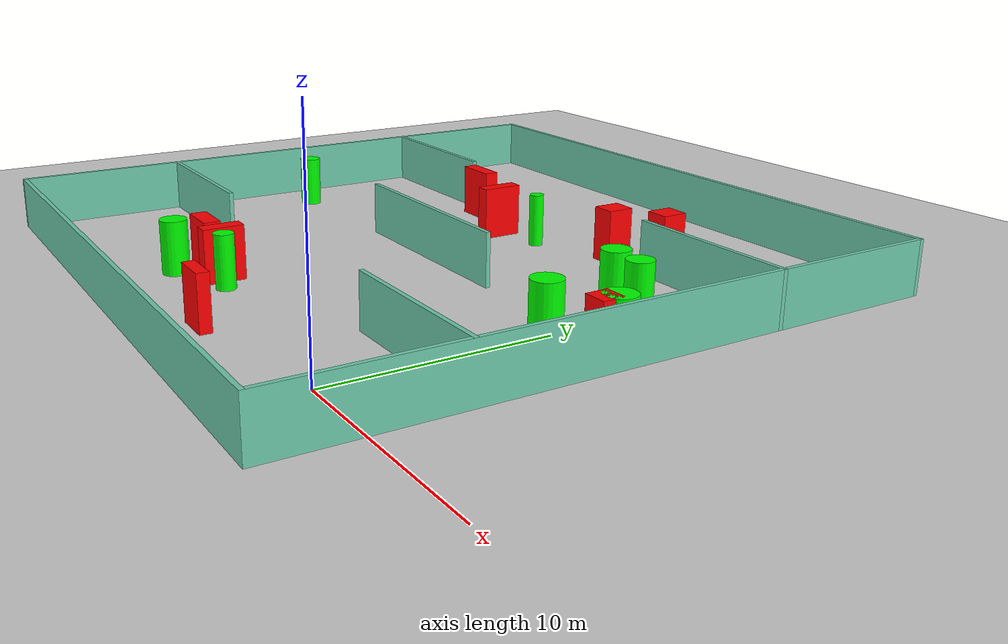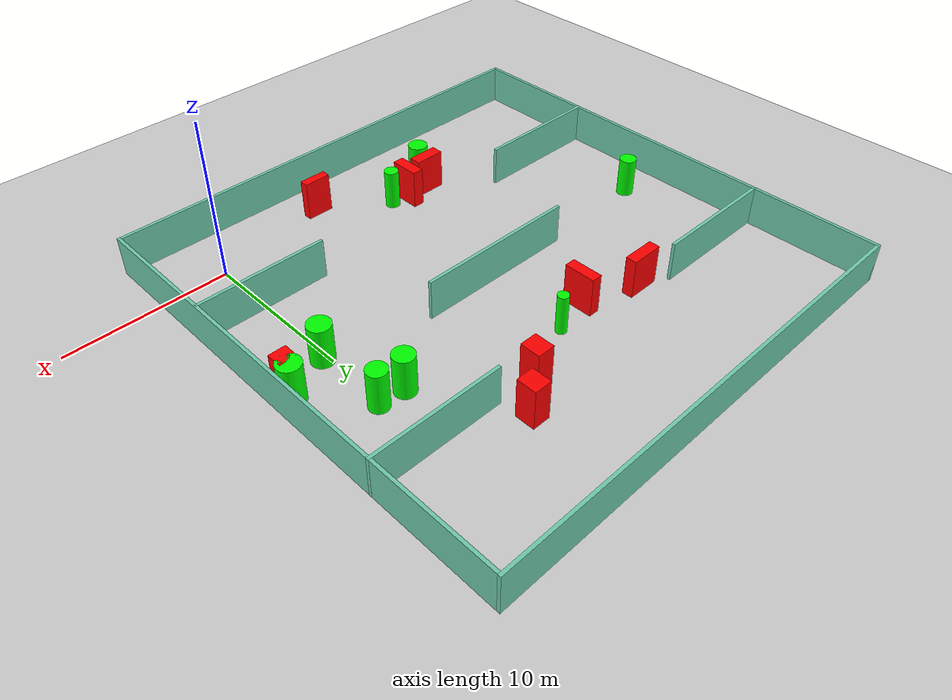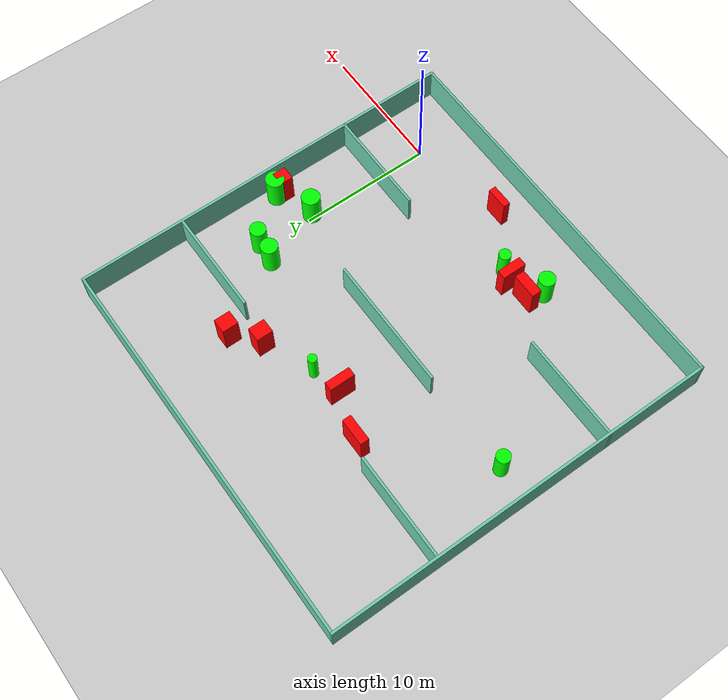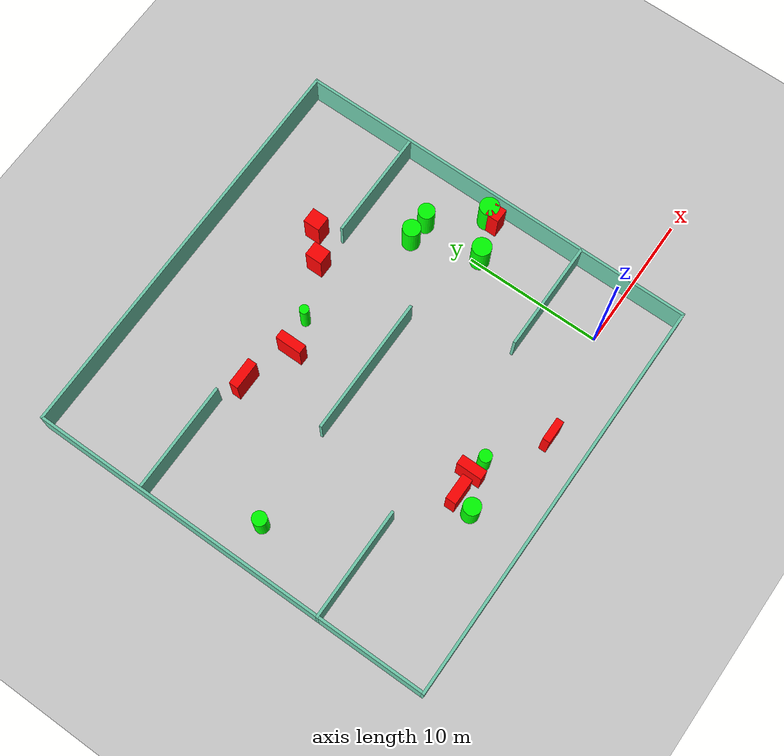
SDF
<sdf version="1.7">
 <world name="default">
  <light name="sun" type="directional">
   <pose>0 0 10 0 -0 0</pose>
   <diffuse>0.8 0.8 0.8 1</diffuse>
   <specular>0.2 0.2 0.2 1</specular>
   <attenuation>
    <range>1000</range>
    <constant>0.9</constant>
    <linear>0.01</linear>
    <quadratic>0.001</quadratic>
   </attenuation>
   <direction>-0.5 0.1 -0.9</direction>
   <spot><inner_angle>0</inner_angle><outer_angle>0</outer_angle><falloff>0</falloff></spot>
  </light>
  <model name="ground_plane">
   <static>1</static>
   <link name="link">
    <collision name="collision">
     <geometry><plane><normal>0 0 1</normal><size>100 100</size></plane></geometry>
     <surface>
      <contact><collide_bitmask>65535</collide_bitmask></contact>
      <friction><ode><mu>100</mu><mu2>50</mu2></ode></friction>
     </surface>
    </collision>
    <visual name="visual">
     <cast_shadows>0</cast_shadows>
     <geometry><plane><normal>0 0 1</normal><size>100 100</size></plane></geometry>
     <material>
      <script><uri>file://media/materials/scripts/gazebo.material</uri><name>Gazebo/Grey</name></script>
     </material>
    </visual>
   </link>
  </model>
  <gravity>0 0 -9.8</gravity>
  <magnetic_field>6e-06 2.3e-05 -4.2e-05</magnetic_field>
  <atmosphere type="adiabatic"/>
  <physics type="ode">
   <max_step_size>0.001</max_step_size>
   <real_time_factor>1</real_time_factor>
   <real_time_update_rate>1000</real_time_update_rate>
  </physics>
  <scene><ambient>0.4 0.4 0.4 1</ambient><background>0.7 0.7 0.7 1</background><shadows>1</shadows></scene>
  <spherical_coordinates>
   <surface_model>EARTH_WGS84</surface_model>
   <latitude_deg>0</latitude_deg>
   <longitude_deg>0</longitude_deg>
   <elevation>0</elevation>
   <heading_deg>0</heading_deg>
  </spherical_coordinates>
  <model name="my_base_walls">
   <link name="Wall_10">
    <collision name="Wall_10_Collision">
     <geometry><box><size>8.2 0.2 2.5</size></box></geometry>
     <pose>0 0 1.25 0 -0 0</pose>
    </collision>
    <visual name="Wall_10_Visual">
     <pose>0 0 1.25 0 -0 0</pose>
     <geometry><box><size>8.2 0.2 2.5</size></box></geometry>
     <material>
      <script><uri>file://media/materials/scripts/gazebo.material</uri><name>Gazebo/Grey</name></script>
      <ambient>0.435294 0.796078 0.67451 1</ambient>
     </material>
     <meta><layer>0</layer></meta>
    </visual>
    <pose>-11 -7 0 0 -0 0</pose>
   </link>
   <link name="Wall_12">
    <collision name="Wall_12_Collision">
     <geometry><box><size>8.2 0.2 2.5</size></box></geometry>
     <pose>0 0 1.25 0 -0 0</pose>
    </collision>
    <visual name="Wall_12_Visual">
     <pose>0 0 1.25 0 -0 0</pose>
     <geometry><box><size>8.2 0.2 2.5</size></box></geometry>
     <material>
      <script><uri>file://media/materials/scripts/gazebo.material</uri><name>Gazebo/Grey</name></script>
      <ambient>0.435294 0.796078 0.67451 1</ambient>
     </material>
     <meta><layer>0</layer></meta>
    </visual>
    <pose>-11 7 0 0 -0 0</pose>
   </link>
   <link name="Wall_14">
    <collision name="Wall_14_Collision">
     <geometry><box><size>8.2 0.2 2.5</size></box></geometry>
     <pose>0 0 1.25 0 -0 0</pose>
    </collision>
    <visual name="Wall_14_Visual">
     <pose>0 0 1.25 0 -0 0</pose>
     <geometry><box><size>8.2 0.2 2.5</size></box></geometry>
     <material>
      <script><uri>file://media/materials/scripts/gazebo.material</uri><name>Gazebo/Grey</name></script>
      <ambient>0.435294 0.796078 0.67451 1</ambient>
     </material>
     <meta><layer>0</layer></meta>
    </visual>
    <pose>11 7 0 0 -0 3.14159</pose>
   </link>
   <link name="Wall_16">
    <collision name="Wall_16_Collision">
     <geometry><box><size>10.2 0.2 2.5</size></box></geometry>
     <pose>0 0 1.25 0 -0 0</pose>
    </collision>
    <visual name="Wall_16_Visual">
     <pose>0 0 1.25 0 -0 0</pose>
     <geometry><box><size>10.2 0.2 2.5</size></box></geometry>
     <material>
      <script><uri>file://media/materials/scripts/gazebo.material</uri><name>Gazebo/Grey</name></script>
      <ambient>0.435294 0.796078 0.67451 1</ambient>
     </material>
     <meta><layer>0</layer></meta>
    </visual>
    <pose>0 0 0 0 -0 3.14159</pose>
   </link>
   <link name="Wall_2">
    <collision name="Wall_2_Collision">
     <geometry><box><size>30.2 0.2 2.5</size></box></geometry>
     <pose>0 0 1.25 0 -0 0</pose>
    </collision>
    <visual name="Wall_2_Visual">
     <pose>0 0 1.25 0 -0 0</pose>
     <geometry><box><size>30.2 0.2 2.5</size></box></geometry>
     <material>
      <script><uri>file://media/materials/scripts/gazebo.material</uri><name>Gazebo/Grey</name></script>
      <ambient>0.435294 0.796078 0.67451 1</ambient>
     </material>
     <meta><layer>0</layer></meta>
    </visual>
    <pose>0 -15 0 0 -0 3.14159</pose>
   </link>
   <link name="Wall_3">
    <collision name="Wall_3_Collision">
     <geometry><box><size>30.2 0.2 2.5</size></box></geometry>
     <pose>0 0 1.25 0 -0 0</pose>
    </collision>
    <visual name="Wall_3_Visual">
     <pose>0 0 1.25 0 -0 0</pose>
     <geometry><box><size>30.2 0.2 2.5</size></box></geometry>
     <material>
      <script><uri>file://media/materials/scripts/gazebo.material</uri><name>Gazebo/Grey</name></script>
      <ambient>0.435294 0.796078 0.67451 1</ambient>
     </material>
     <meta><layer>0</layer></meta>
    </visual>
    <pose>-15 0 0 0 -0 1.5708</pose>
   </link>
   <link name="Wall_4">
    <collision name="Wall_4_Collision">
     <geometry><box><size>30.2 0.2 2.5</size></box></geometry>
     <pose>0 0 1.25 0 -0 0</pose>
    </collision>
    <visual name="Wall_4_Visual">
     <pose>0 0 1.25 0 -0 0</pose>
     <geometry><box><size>30.2 0.2 2.5</size></box></geometry>
     <material>
      <script><uri>file://media/materials/scripts/gazebo.material</uri><name>Gazebo/Grey</name></script>
      <ambient>0.435294 0.796078 0.67451 1</ambient>
     </material>
     <meta><layer>0</layer></meta>
    </visual>
    <pose>0 15 0 0 -0 0</pose>
   </link>
   <link name="Wall_6">
    <collision name="Wall_6_Collision">
     <geometry><box><size>30.2 0.2 2.5</size></box></geometry>
     <pose>0 0 1.25 0 -0 0</pose>
    </collision>
    <visual name="Wall_6_Visual">
     <pose>0 0 1.25 0 -0 0</pose>
     <geometry><box><size>30.2 0.2 2.5</size></box></geometry>
     <material>
      <script><uri>file://media/materials/scripts/gazebo.material</uri><name>Gazebo/Grey</name></script>
      <ambient>0.435294 0.796078 0.67451 1</ambient>
     </material>
     <meta><layer>0</layer></meta>
    </visual>
    <pose>15 0 0 0 -0 1.5708</pose>
   </link>
   <link name="Wall_8">
    <collision name="Wall_8_Collision">
     <geometry><box><size>8.2 0.2 2.5</size></box></geometry>
     <pose>0 0 1.25 0 -0 0</pose>
    </collision>
    <visual name="Wall_8_Visual">
     <pose>0 0 1.25 0 -0 0</pose>
     <geometry><box><size>8.2 0.2 2.5</size></box></geometry>
     <material>
      <script><uri>file://media/materials/scripts/gazebo.material</uri><name>Gazebo/Grey</name></script>
      <ambient>0.435294 0.796078 0.67451 1</ambient>
     </material>
     <meta><layer>0</layer></meta>
    </visual>
    <pose>11 -7 0 0 -0 3.14159</pose>
   </link>
   <static>1</static>
   <pose>-11 11 0 0 -0 0</pose>
  </model>
  <model name="cylinder1">
   <static>1</static>
   <link name="link">
    <inertial>
     <mass>1</mass>
     <inertia><ixx>0.5</ixx><ixy>0</ixy><ixz>0</ixz><iyy>0.5</iyy><iyz>0</iyz><izz>1</izz></inertia>
    </inertial>
    <collision name="collision">
     <geometry><cylinder><radius>0.6925863595175858</radius><length>2.5</length></cylinder></geometry>
    </collision>
    <visual name="visual">
     <geometry><cylinder><radius>0.6925863595175858</radius><length>2.5</length></cylinder></geometry>
     <material>
      <ambient>0 1 0 1</ambient>
      <diffuse>0 1 0 1</diffuse>
      <specular>0.1 0.1 0.1 1</specular>
      <emissive>0 0 0 0</emissive>
     </material>
    </visual>
   </link>
   <pose>0.30175399349553444 9.541450600312997 1.25 0 0 0</pose>
  </model>
  <model name="cylinder2">
   <static>1</static>
   <link name="link">
    <inertial>
     <mass>1</mass>
     <inertia><ixx>0.5</ixx><ixy>0</ixy><ixz>0</ixz><iyy>0.5</iyy><iyz>0</iyz><izz>1</izz></inertia>
    </inertial>
    <collision name="collision">
     <geometry><cylinder><radius>0.45253288688198223</radius><length>2.5</length></cylinder></geometry>
    </collision>
    <visual name="visual">
     <geometry><cylinder><radius>0.45253288688198223</radius><length>2.5</length></cylinder></geometry>
     <material>
      <ambient>0 1 0 1</ambient>
      <diffuse>0 1 0 1</diffuse>
      <specular>0.1 0.1 0.1 1</specular>
      <emissive>0 0 0 0</emissive>
     </material>
    </visual>
   </link>
   <pose>-11.530411135669825 1.2476186207089004 1.25 0 0 0</pose>
  </model>
  <model name="cylinder3">
   <static>1</static>
   <link name="link">
    <inertial>
     <mass>1</mass>
     <inertia><ixx>0.5</ixx><ixy>0</ixy><ixz>0</ixz><iyy>0.5</iyy><iyz>0</iyz><izz>1</izz></inertia>
    </inertial>
    <collision name="collision">
     <geometry><cylinder><radius>0.6169095287703574</radius><length>2.5</length></cylinder></geometry>
    </collision>
    <visual name="visual">
     <geometry><cylinder><radius>0.6169095287703574</radius><length>2.5</length></cylinder></geometry>
     <material>
      <ambient>0 1 0 1</ambient>
      <diffuse>0 1 0 1</diffuse>
      <specular>0.1 0.1 0.1 1</specular>
      <emissive>0 0 0 0</emissive>
     </material>
    </visual>
   </link>
   <pose>-14.749782263538535 0.0901348092742138 1.25 0 0 0</pose>
  </model>
  <model name="cylinder4">
   <static>1</static>
   <link name="link">
    <inertial>
     <mass>1</mass>
     <inertia><ixx>0.5</ixx><ixy>0</ixy><ixz>0</ixz><iyy>0.5</iyy><iyz>0</iyz><izz>1</izz></inertia>
    </inertial>
    <collision name="collision">
     <geometry><cylinder><radius>0.5196451261162937</radius><length>2.5</length></cylinder></geometry>
    </collision>
    <visual name="visual">
     <geometry><cylinder><radius>0.5196451261162937</radius><length>2.5</length></cylinder></geometry>
     <material>
      <ambient>0 1 0 1</ambient>
      <diffuse>0 1 0 1</diffuse>
      <specular>0.1 0.1 0.1 1</specular>
      <emissive>0 0 0 0</emissive>
     </material>
    </visual>
   </link>
   <pose>-23.18208358557703 10.593863673118001 1.25 0 0 0</pose>
  </model>
  <model name="cylinder5">
   <static>1</static>
   <link name="link">
    <inertial>
     <mass>1</mass>
     <inertia><ixx>0.5</ixx><ixy>0</ixy><ixz>0</ixz><iyy>0.5</iyy><iyz>0</iyz><izz>1</izz></inertia>
    </inertial>
    <collision name="collision">
     <geometry><cylinder><radius>0.5996512347615646</radius><length>2.5</length></cylinder></geometry>
    </collision>
    <visual name="visual">
     <geometry><cylinder><radius>0.5996512347615646</radius><length>2.5</length></cylinder></geometry>
     <material>
      <ambient>0 1 0 1</ambient>
      <diffuse>0 1 0 1</diffuse>
      <specular>0.1 0.1 0.1 1</specular>
      <emissive>0 0 0 0</emissive>
     </material>
    </visual>
   </link>
   <pose>0.2890715314305723 14.059959816674812 1.25 0 0 0</pose>
  </model>
  <model name="cylinder6">
   <static>1</static>
   <link name="link">
    <inertial>
     <mass>1</mass>
     <inertia><ixx>0.5</ixx><ixy>0</ixy><ixz>0</ixz><iyy>0.5</iyy><iyz>0</iyz><izz>1</izz></inertia>
    </inertial>
    <collision name="collision">
     <geometry><cylinder><radius>0.6451512665399352</radius><length>2.5</length></cylinder></geometry>
    </collision>
    <visual name="visual">
     <geometry><cylinder><radius>0.6451512665399352</radius><length>2.5</length></cylinder></geometry>
     <material>
      <ambient>0 1 0 1</ambient>
      <diffuse>0 1 0 1</diffuse>
      <specular>0.1 0.1 0.1 1</specular>
      <emissive>0 0 0 0</emissive>
     </material>
    </visual>
   </link>
   <pose>-1.3130182958688792 14.175376598455287 1.25 0 0 0</pose>
  </model>
  <model name="cylinder7">
   <static>1</static>
   <link name="link">
    <inertial>
     <mass>1</mass>
     <inertia><ixx>0.5</ixx><ixy>0</ixy><ixz>0</ixz><iyy>0.5</iyy><iyz>0</iyz><izz>1</izz></inertia>
    </inertial>
    <collision name="collision">
     <geometry><cylinder><radius>0.33954835369598513</radius><length>2.5</length></cylinder></geometry>
    </collision>
    <visual name="visual">
     <geometry><cylinder><radius>0.33954835369598513</radius><length>2.5</length></cylinder></geometry>
     <material>
      <ambient>0 1 0 1</ambient>
      <diffuse>0 1 0 1</diffuse>
      <specular>0.1 0.1 0.1 1</specular>
      <emissive>0 0 0 0</emissive>
     </material>
    </visual>
   </link>
   <pose>-10.22081533623295 16.62326602017786 1.25 0 0 0</pose>
  </model>
  <model name="cylinder8">
   <static>1</static>
   <link name="link">
    <inertial>
     <mass>1</mass>
     <inertia><ixx>0.5</ixx><ixy>0</ixy><ixz>0</ixz><iyy>0.5</iyy><iyz>0</iyz><izz>1</izz></inertia>
    </inertial>
    <collision name="collision">
     <geometry><cylinder><radius>0.6999462667768352</radius><length>2.5</length></cylinder></geometry>
    </collision>
    <visual name="visual">
     <geometry><cylinder><radius>0.6999462667768352</radius><length>2.5</length></cylinder></geometry>
     <material>
      <ambient>0 1 0 1</ambient>
      <diffuse>0 1 0 1</diffuse>
      <specular>0.1 0.1 0.1 1</specular>
      <emissive>0 0 0 0</emissive>
     </material>
    </visual>
   </link>
   <pose>3.0433280078526153 10.777853846535951 1.25 0 0 0</pose>
  </model>
  <model name="box1">
   <static>1</static>
   <link name="link">
    <inertial>
     <mass>1</mass>
     <inertia><ixx>0.083</ixx><ixy>0</ixy><ixz>0</ixz><iyy>0.083</iyy><iyz>0</iyz><izz>0.083</izz></inertia>
    </inertial>
    <collision name="collision">
     <geometry><box><size>1.0971625284089024 1.2503812224051472 2.5</size></box></geometry>
    </collision>
    <visual name="visual">
     <geometry><box><size>1.0971625284089024 1.2503812224051472 2.5</size></box></geometry>
     <material>
      <ambient>1 0 0 1</ambient>
      <diffuse>1 0 0 1</diffuse>
      <specular>0.1 0.1 0.1 1</specular>
      <emissive>0 0 0 0</emissive>
     </material>
    </visual>
    <sensor name="my_contact" type="contact">
     <contact><collision>box_collision</collision><topic>__default_topic__</topic></contact>
    </sensor>
   </link>
   <pose>-6.44428746479336 18.261137382870903 1.25 0 0 0</pose>
  </model>
  <model name="box2">
   <static>1</static>
   <link name="link">
    <inertial>
     <mass>1</mass>
     <inertia><ixx>0.083</ixx><ixy>0</ixy><ixz>0</ixz><iyy>0.083</iyy><iyz>0</iyz><izz>0.083</izz></inertia>
    </inertial>
    <collision name="collision">
     <geometry><box><size>1.6931436810818985 0.5436315869319661 2.5</size></box></geometry>
    </collision>
    <visual name="visual">
     <geometry><box><size>1.6931436810818985 0.5436315869319661 2.5</size></box></geometry>
     <material>
      <ambient>1 0 0 1</ambient>
      <diffuse>1 0 0 1</diffuse>
      <specular>0.1 0.1 0.1 1</specular>
      <emissive>0 0 0 0</emissive>
     </material>
    </visual>
    <sensor name="my_contact" type="contact">
     <contact><collision>box_collision</collision><topic>__default_topic__</topic></contact>
    </sensor>
   </link>
   <pose>-7.603470051917785 -1.351968552456253 1.25 0 0 0</pose>
  </model>
  <model name="box3">
   <static>1</static>
   <link name="link">
    <inertial>
     <mass>1</mass>
     <inertia><ixx>0.083</ixx><ixy>0</ixy><ixz>0</ixz><iyy>0.083</iyy><iyz>0</iyz><izz>0.083</izz></inertia>
    </inertial>
    <collision name="collision">
     <geometry><box><size>1.1086603168312505 1.2321620627404708 2.5</size></box></geometry>
    </collision>
    <visual name="visual">
     <geometry><box><size>1.1086603168312505 1.2321620627404708 2.5</size></box></geometry>
     <material>
      <ambient>1 0 0 1</ambient>
      <diffuse>1 0 0 1</diffuse>
      <specular>0.1 0.1 0.1 1</specular>
      <emissive>0 0 0 0</emissive>
     </material>
    </visual>
    <sensor name="my_contact" type="contact">
     <contact><collision>box_collision</collision><topic>__default_topic__</topic></contact>
    </sensor>
   </link>
   <pose>-4.552729641707074 19.80085860312939 1.25 0 0 0</pose>
  </model>
  <model name="box4">
   <static>1</static>
   <link name="link">
    <inertial>
     <mass>1</mass>
     <inertia><ixx>0.083</ixx><ixy>0</ixy><ixz>0</ixz><iyy>0.083</iyy><iyz>0</iyz><izz>0.083</izz></inertia>
    </inertial>
    <collision name="collision">
     <geometry><box><size>0.704355274399578 1.8754052392122538 2.5</size></box></geometry>
    </collision>
    <visual name="visual">
     <geometry><box><size>0.704355274399578 1.8754052392122538 2.5</size></box></geometry>
     <material>
      <ambient>1 0 0 1</ambient>
      <diffuse>1 0 0 1</diffuse>
      <specular>0.1 0.1 0.1 1</specular>
      <emissive>0 0 0 0</emissive>
     </material>
    </visual>
    <sensor name="my_contact" type="contact">
     <contact><collision>box_collision</collision><topic>__default_topic__</topic></contact>
    </sensor>
   </link>
   <pose>-12.647473465965144 1.5405652510834704 1.25 0 0 0</pose>
  </model>
  <model name="box5">
   <static>1</static>
   <link name="link">
    <inertial>
     <mass>1</mass>
     <inertia><ixx>0.083</ixx><ixy>0</ixy><ixz>0</ixz><iyy>0.083</iyy><iyz>0</iyz><izz>0.083</izz></inertia>
    </inertial>
    <collision name="collision">
     <geometry><box><size>1.9128544572687427 0.7608806868515493 2.5</size></box></geometry>
    </collision>
    <visual name="visual">
     <geometry><box><size>1.9128544572687427 0.7608806868515493 2.5</size></box></geometry>
     <material>
      <ambient>1 0 0 1</ambient>
      <diffuse>1 0 0 1</diffuse>
      <specular>0.1 0.1 0.1 1</specular>
      <emissive>0 0 0 0</emissive>
     </material>
    </visual>
    <sensor name="my_contact" type="contact">
     <contact><collision>box_collision</collision><topic>__default_topic__</topic></contact>
    </sensor>
   </link>
   <pose>-14.294749197542004 1.4023459763311967 1.25 0 0 0</pose>
  </model>
  <model name="box6">
   <static>1</static>
   <link name="link">
    <inertial>
     <mass>1</mass>
     <inertia><ixx>0.083</ixx><ixy>0</ixy><ixz>0</ixz><iyy>0.083</iyy><iyz>0</iyz><izz>0.083</izz></inertia>
    </inertial>
    <collision name="collision">
     <geometry><box><size>1.0494606080751945 1.0026340022500013 2.5</size></box></geometry>
    </collision>
    <visual name="visual">
     <geometry><box><size>1.0494606080751945 1.0026340022500013 2.5</size></box></geometry>
     <material>
      <ambient>1 0 0 1</ambient>
      <diffuse>1 0 0 1</diffuse>
      <specular>0.1 0.1 0.1 1</specular>
      <emissive>0 0 0 0</emissive>
     </material>
    </visual>
    <sensor name="my_contact" type="contact">
     <contact><collision>box_collision</collision><topic>__default_topic__</topic></contact>
    </sensor>
   </link>
   <pose>2.9363026034290414 10.176333967759321 1.25 0 0 0</pose>
  </model>
  <model name="box7">
   <static>1</static>
   <link name="link">
    <inertial>
     <mass>1</mass>
     <inertia><ixx>0.083</ixx><ixy>0</ixy><ixz>0</ixz><iyy>0.083</iyy><iyz>0</iyz><izz>0.083</izz></inertia>
    </inertial>
    <collision name="collision">
     <geometry><box><size>2.077014396213083 0.6791585407966736 2.5</size></box></geometry>
    </collision>
    <visual name="visual">
     <geometry><box><size>2.077014396213083 0.6791585407966736 2.5</size></box></geometry>
     <material>
      <ambient>1 0 0 1</ambient>
      <diffuse>1 0 0 1</diffuse>
      <specular>0.1 0.1 0.1 1</specular>
      <emissive>0 0 0 0</emissive>
     </material>
    </visual>
    <sensor name="my_contact" type="contact">
     <contact><collision>box_collision</collision><topic>__default_topic__</topic></contact>
    </sensor>
   </link>
   <pose>-16.11785381202751 17.240590735058262 1.25 0 0 0</pose>
  </model>
  <model name="box8">
   <static>1</static>
   <link name="link">
    <inertial>
     <mass>1</mass>
     <inertia><ixx>0.083</ixx><ixy>0</ixy><ixz>0</ixz><iyy>0.083</iyy><iyz>0</iyz><izz>0.083</izz></inertia>
    </inertial>
    <collision name="collision">
     <geometry><box><size>0.6794019256751348 1.9455571578382642 2.5</size></box></geometry>
    </collision>
    <visual name="visual">
     <geometry><box><size>0.6794019256751348 1.9455571578382642 2.5</size></box></geometry>
     <material>
      <ambient>1 0 0 1</ambient>
      <diffuse>1 0 0 1</diffuse>
      <specular>0.1 0.1 0.1 1</specular>
      <emissive>0 0 0 0</emissive>
     </material>
    </visual>
    <sensor name="my_contact" type="contact">
     <contact><collision>box_collision</collision><topic>__default_topic__</topic></contact>
    </sensor>
   </link>
   <pose>-12.541414312111907 16.00026772341573 1.25 0 0 0</pose>
  </model>
 </world>
</sdf>
